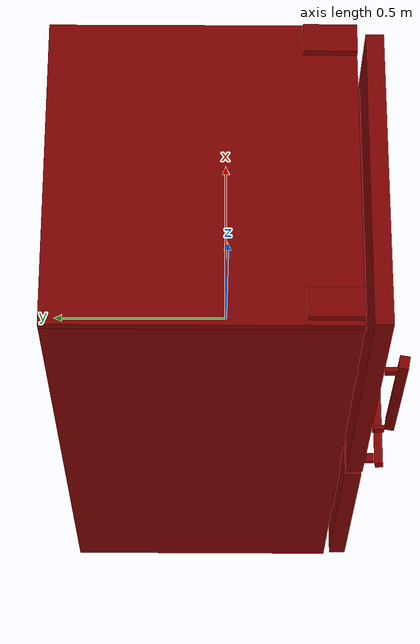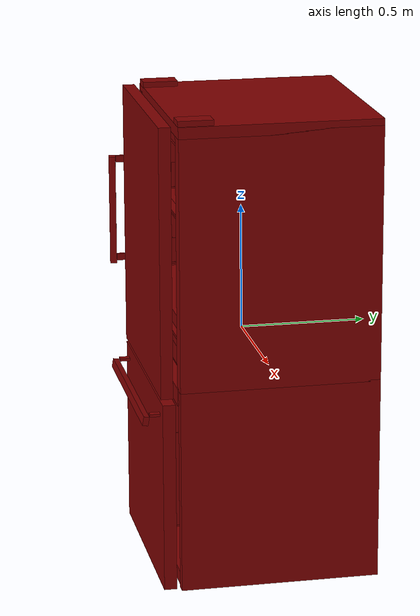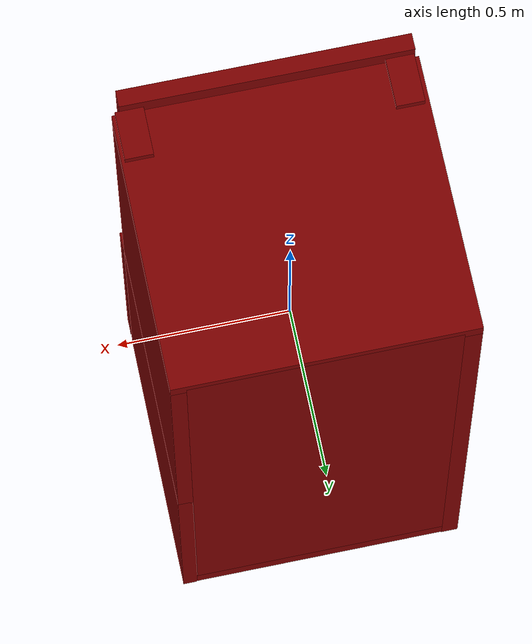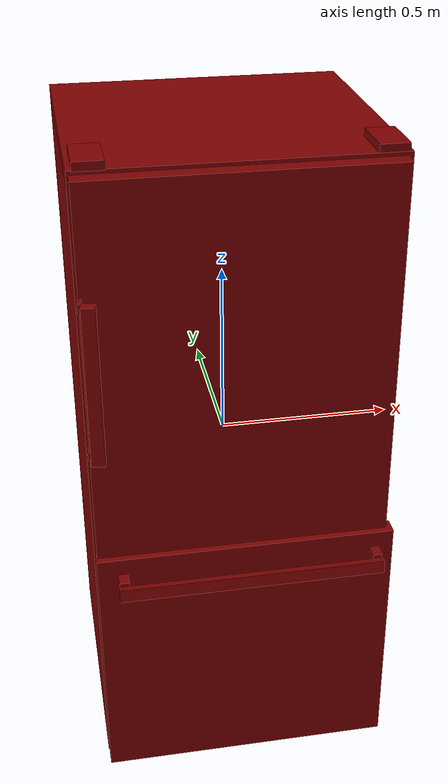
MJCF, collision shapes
<?xml version='1.0' encoding='UTF-8'?>
<mujoco model="model">
  <option timestep="0.002" gravity="0.0 0.0 -9.81"/>
  <compiler angle="radian"/>
  <asset>
    <mesh file="visuals/freezer0.obj" name="freezer0_vis"/>
    <mesh file="visuals/fridge_door.obj" name="fridge_door_vis"/>
    <mesh file="visuals/fridge_drawer0.obj" name="fridge_drawer0_vis"/>
    <mesh file="visuals/Body001.obj" name="Body001_vis"/>
    <mesh file="visuals/Body001_Clear.obj" name="Body001_Clear_vis"/>
    <texture file="visuals/T_BC001.png" name="Body001_material" type="2d"/>
    <material name="Body001_material" rgba="1 1 1 1.0" texture="Body001_material" shininess="0.4472135901451111" specular="2"/>
    <texture file="visuals/T_BC001.png" name="freezer0_material" type="2d"/>
    <material name="freezer0_material" rgba="1 1 1 1.0" texture="freezer0_material" shininess="0.4472135901451111" specular="2"/>
    <texture file="visuals/T_BC001.png" name="fridge_door_material" type="2d"/>
    <material name="fridge_door_material" rgba="1 1 1 1.0" texture="fridge_door_material" shininess="0.4472135901451111" specular="2"/>
    <texture file="visuals/T_BC001.png" name="fridge_drawer0_material" type="2d"/>
    <material name="fridge_drawer0_material" rgba="1 1 1 1.0" texture="fridge_drawer0_material" shininess="0.4472135901451111" specular="0.3103448502657381"/>
    <texture file="visuals/T_BC001.png" name="Body001_Clear_material" type="2d"/>
    <material name="Body001_Clear_material" rgba="1 1 1 0.30000001192092896" texture="Body001_Clear_material" shininess="0.5" specular="0.3103448502657381"/>
  </asset>
  <default>
    <default class="visual">
      <geom conaffinity="0" contype="0" group="1" type="mesh"/>
    </default>
    <default class="collision">
      <geom group="0" rgba="0.5 0 0 0.5"/>
    </default>
    <default class="spawn">
      <geom group="0" rgba="1 1 1 0.5" contype="0" conaffinity="0"/>
      <site group="0" rgba="1 1 1 0.5"/>
    </default>
    <default class="region">
      <geom group="1" conaffinity="0" contype="0" rgba="0 1 0 0"/>
    </default>
  </default>
  <worldbody>
    <body>
      <body name="object">
        <geom mesh="Body001_vis" type="mesh" solimp="0.998 0.998 0.001" solref="0.001 1" friction="0.95 0.3 0.1" class="visual" material="Body001_material"/>
        <geom class="collision" type="box" pos="-0.39734341 0.06868652 -0.02232990" size="0.024582751095294952 0.3958558142185211 0.9123587608337402" quat="1.0 0.0 0.0 0.0"/>
        <geom class="collision" type="box" pos="0.38678871 0.06957527 0.38303334" size="0.035117484629154205 0.39496707916259766 0.5057685375213623" quat="1.0 0.0 0.0 0.0"/>
        <geom class="collision" type="box" pos="-0.00000999 0.06896822 0.89282769" size="0.4219162166118622 0.395574152469635 0.022675316780805588" quat="1.0 0.0 0.0 0.0"/>
        <geom class="collision" type="box" pos="0.00467826 0.07090291 -0.90186447" size="0.3776070177555084 0.393639475107193 0.02701234444975853" quat="1.0 0.0 0.0 0.0"/>
        <geom class="collision" type="box" pos="-0.00672315 -0.02200578 0.13901508" size="0.36705219745635986 0.2994949221611023 0.02570364437997341" quat="1.0 0.0 0.0 0.0"/>
        <geom class="collision" type="box" pos="0.00258596 0.37173910 0.00701990" size="0.3755362629890442 0.09280380606651306 0.8820443749427795" quat="3.1391647326017846e-07 1.0 0.0 0.0"/>
        <geom class="collision" type="box" pos="-0.36866869 -0.25809531 0.92509615" size="0.03959636390209198 0.06952385604381561 0.011944188736379147" quat="1.0 0.0 0.0 0.0"/>
        <geom class="collision" type="box" pos="0.37300716 -0.25741784 0.92480695" size="0.0395231693983078 0.06911013275384903 0.012353199534118176" quat="1.0 0.0 0.0 0.0"/>
        <geom class="collision" type="box" pos="0.00719822 0.01730947 -0.14872839" size="0.3804530203342438 0.346701443195343 0.03384808078408241" quat="1.0 0.0 0.0 0.0"/>
        <geom class="collision" type="box" pos="-0.01069421 0.00538809 0.52074862" size="0.36244529485702515 0.2747921347618103 0.003323649987578392" quat="1.0 0.0 0.0 0.0"/>
        <geom class="collision" type="box" pos="-0.00794114 -0.28289820 0.52107555" size="0.36531367897987366 0.015593416057527065 0.0045109703205525875" quat="1.0 0.0 0.0 0.0"/>
        <geom class="collision" type="box" pos="0.36433913 -0.01672947 -0.69800556" size="0.020433694124221802 0.2735162377357483 0.008951575495302677" quat="1.0 0.0 0.0 0.0"/>
        <geom class="collision" type="box" pos="-0.35945650 -0.01672947 -0.69800556" size="0.016302676871418953 0.2735162377357483 0.008951575495302677" quat="1.0 0.0 0.0 0.0"/>
        <geom class="collision" type="box" pos="0.40077124 0.06957527 -0.52524245" size="0.021134987473487854 0.39496707916259766 0.4088838994503021" quat="1.0 0.0 0.0 0.0"/>
        <body name="freezer0">
          <geom class="region" name="reg_freezer0" type="box" pos="0.002733559999999996 -0.070986365 -0.49028161" size="0.34177461 0.261709025 0.18425629999999998"/>
          <joint axis="0.0 -1.0 0.0" pos="0.00245730 -0.13173281 -0.53712565" limited="true" name="freezer0_door_joint" range="0.0 0.45" type="slide" damping="1" frictionloss="1" armature=".01" stiffness="0.05"/>
          <geom mesh="freezer0_vis" type="mesh" solimp="0.998 0.998 0.001" solref="0.001 1" friction="0.95 0.3 0.1" class="visual" material="freezer0_material"/>
          <geom class="collision" type="box" pos="0.00101421 -0.37022994 -0.54430532" size="0.42105668783187866 0.024916762486100197 0.3797958195209503" quat="3.1391647326017846e-07 0.0 0.0 1.0" name="freezer0_door_main"/>
          <geom class="collision" type="box" pos="0.36509861 -0.41697411 -0.21702737" size="0.005502200219780207 0.02020723931491375 0.01259185466915369" quat="2.2197248483735166e-07 0.7071068286895752 2.2197245641564223e-07 -0.7071067690849304" name="freezer0_door_handle_2"/>
          <geom class="collision" type="box" pos="-0.34961693 -0.41697411 -0.21770769" size="0.0058198533952236176 0.02020723931491375 0.013519251719117165" quat="2.2197248483735166e-07 0.7071068286895752 2.2197245641564223e-07 -0.7071067690849304" name="freezer0_door_handle_1"/>
          <geom class="collision" type="box" pos="0.00725539 -0.45327224 -0.23699996" size="0.01135221403092146 0.017708100378513336 0.372952938079834" quat="0.4577842354774475 -0.5389187932014465 -0.4577847123146057 0.5389186143875122" name="freezer0_door_handle_main"/>
          <geom class="collision" type="box" pos="0.35581551 -0.07084201 -0.48995477" size="0.2693040370941162 0.00428370013833046 0.19067460298538208" quat="0.70710688829422 0.0 0.0 -0.7071066498756409"/>
          <geom class="collision" type="box" pos="-0.35010438 -0.07202154 -0.49099714" size="0.27165547013282776 0.004035268444567919 0.19088585674762726" quat="0.70710688829422 0.0 0.0 -0.7071066498756409"/>
          <geom class="collision" type="box" pos="0.00446664 0.19914675 -0.49239650" size="0.35604700446128845 0.002275570761412382 0.19196023046970367" quat="3.1391647326017846e-07 0.0 0.0 1.0"/>
          <geom class="collision" type="box" pos="0.00290398 -0.07255718 -0.68430138" size="0.35675811767578125 0.26802751421928406 0.0031557735055685043" quat="3.1391647326017846e-07 0.0 1.0 0.0"/>
        </body>
        <body name="fridge_door">
          <joint axis="0.0 0.0 1.0" pos="0.375 -0.38 0.38257733" limited="true" name="fridge_door_joint" range="0.0 1.5707963267948966" type="hinge" damping="1" frictionloss="1" armature=".01" stiffness="0.05"/>
          <geom mesh="fridge_door_vis" type="mesh" solimp="0.998 0.998 0.001" solref="0.001 1" friction="0.95 0.3 0.1" class="visual" material="fridge_door_material"/>
          <geom class="collision" type="box" pos="-0.01 -0.37350373 0.38219565" size="0.4075 0.02361985854804516 0.530463695526123" quat="3.1391647326017846e-07 0.0 0.0 1.0" name="fridge_door_main"/>
          <geom class="collision" type="box" pos="-0.00006003 -0.26769041 0.42091924" size="0.32674068212509155 0.003287653438746929 0.04923586919903755" quat="1.0 0.0 0.0 0.0"/>
          <geom class="collision" type="box" pos="-0.41553165 -0.41483556 0.61151016" size="0.006407890934497118 0.01600920781493187 0.01343460287898779" quat="3.1391647326017846e-07 1.0 0.0 0.0" name="fridge_door_handle_1"/>
          <geom class="collision" type="box" pos="-0.41658785 -0.41467117 0.20106009" size="0.00548302847892046 0.01593061164021492 0.01375274732708931" quat="3.1391647326017846e-07 1.0 0.0 0.0" name="fridge_door_handle_2"/>
          <geom class="collision" type="box" pos="-0.39663948 -0.44817348 0.40620443" size="0.013300185091793537 0.017666669562458992 0.2206582874059677" quat="2.3925022674120555e-07 0.7621461153030396 0.6474050283432007 2.0323111016296025e-07" name="fridge_door_handle_main"/>
          <geom class="collision" type="box" pos="-0.00006003 -0.34045379 0.42091924" size="0.32674068212509155 0.003287653438746929 0.04923586919903755" quat="1.0 0.0 0.0 0.0"/>
          <geom class="collision" type="box" pos="0.32259120 -0.30307786 0.42091924" size="0.0022356424015015364 0.033304814249277115 0.04923586919903755" quat="1.0 0.0 0.0 0.0"/>
          <geom class="collision" type="box" pos="-0.32436781 -0.30307786 0.42091924" size="0.0022356424015015364 0.033304814249277115 0.04923586919903755" quat="1.0 0.0 0.0 0.0"/>
          <geom class="collision" type="box" pos="-0.00006003 -0.30870746 0.37453622" size="0.32674068212509155 0.04224937781691551 0.0028528415132313967" quat="1.0 0.0 0.0 0.0"/>
          <geom class="collision" type="box" pos="-0.00006003 -0.30870746 0.66689944" size="0.32674068212509155 0.04224937781691551 0.0028528443071991205" quat="1.0 0.0 0.0 0.0"/>
          <geom class="collision" type="box" pos="-0.32436781 -0.30307786 0.71328247" size="0.0022356424015015364 0.033304814249277115 0.04923586547374725" quat="1.0 0.0 0.0 0.0"/>
          <geom class="collision" type="box" pos="0.32259120 -0.30307786 0.71328247" size="0.0022356424015015364 0.033304814249277115 0.04923586547374725" quat="1.0 0.0 0.0 0.0"/>
          <geom class="collision" type="box" pos="-0.00006003 -0.34045379 0.71328247" size="0.32674068212509155 0.003287653438746929 0.04923586919903755" quat="1.0 0.0 0.0 0.0"/>
          <geom class="collision" type="box" pos="-0.00006003 -0.26769041 0.71328247" size="0.32674068212509155 0.003287653438746929 0.04923586919903755" quat="1.0 0.0 0.0 0.0"/>
        </body>
        <body name="fridge_drawer0">
          <geom class="region" name="reg_fridge_drawer0" type="box" pos="-0.015662344999999994 -0.010882660000000002 0.009653840000000004" size="0.31505739499999996 0.24374197000000003 0.05387845"/>
          <joint axis="0.0 -1.0 0.0" pos="-0.01669614 -0.02693380 -0.01740865" limited="true" name="fridge_drawer0_joint" range="0.0 0.45" type="slide" damping="1" frictionloss="1" armature=".01" stiffness="0.05"/>
          <geom mesh="fridge_drawer0_vis" type="mesh" solimp="0.998 0.998 0.001" solref="0.001 1" friction="0.95 0.3 0.1" class="visual" material="fridge_drawer0_material"/>
          <geom class="collision" type="box" pos="0.31600068 -0.01406682 -0.01255758" size="0.009566817432641983 0.2545154392719269 0.08353973925113678" quat="1.0 -1.410649872468639e-07 0.0 0.0"/>
          <geom class="collision" type="box" pos="-0.01648752 0.25094597 -0.00813519" size="0.34095457196235657 0.011887704953551292 0.07921215891838074" quat="1.0 -1.410649872468639e-07 0.0 0.0"/>
          <geom class="collision" type="box" pos="-0.01633956 -0.27369253 -0.01168421" size="0.3408662676811218 0.012720691971480846 0.08273868262767792" quat="1.0 -1.410649872468639e-07 0.0 0.0"/>
          <geom class="collision" type="box" pos="-0.34784483 -0.01406681 -0.01255757" size="0.010321862064301968 0.2545155882835388 0.08353979885578156" quat="1.0 -1.410649872468639e-07 0.0 0.0"/>
          <geom class="collision" type="box" pos="-0.01660220 -0.01141050 -0.07649516" size="0.341022253036499 0.27389633655548096 0.02545464038848877" quat="1.0 -1.410649872468639e-07 0.0 0.0"/>
          <geom class="collision" type="box" pos="-0.01672430 -0.29905726 0.06356654" size="0.3385600447654724 0.005844410043209791 0.017213759943842888" quat="0.7071068286895752 0.7071067690849304 0.0 0.0"/>
          <geom class="collision" type="box" pos="-0.01672430 -0.31226040 0.04510998" size="0.3385600447654724 0.013608235865831375 0.004010598175227642" quat="0.7071068286895752 0.7071067690849304 0.0 0.0"/>
        </body>
        <body name="Body001_Clear">
          <geom mesh="Body001_Clear_vis" type="mesh" solimp="0.998 0.998 0.001" solref="0.001 1" friction="0.95 0.3 0.1" class="visual" material="Body001_Clear_material"/>
          <geom class="collision" type="box" pos="-0.01069421 0.00538809 0.52074862" size="0.36244529485702515 0.2747921347618103 0.003323649987578392" quat="1.0 0.0 0.0 0.0"/>
        </body>
        <geom class="region" name="reg_fridge_shelf0" type="box" pos="-0.013830365000000011 -0.027141374999999995 0.34219716499999997" size="0.354097545 0.29848749500000005 0.16943487499999998"/>
        <geom class="region" name="reg_fridge_shelf1" type="box" pos="-0.013830365000000011 -0.010357334999999995 0.69628459" size="0.354097545 0.28170345500000005 0.16529132000000002"/>
        <geom class="region" name="reg_main" type="box" pos="-9.994999999984877e-06 0.03370937999999998 0.0" size="0.422916185 0.43183298000000003 0.93816013"/>
      </body>
    </body>
  </worldbody>
  <actuator>
    <motor name="freezer0_door_joint_actuator" joint="freezer0_door_joint" gear="50"/>
    <motor name="fridge_door_joint_actuator" joint="fridge_door_joint" gear="50"/>
    <motor name="fridge_drawer0_joint_actuator" joint="fridge_drawer0_joint" gear="50"/>
  </actuator>
</mujoco>
